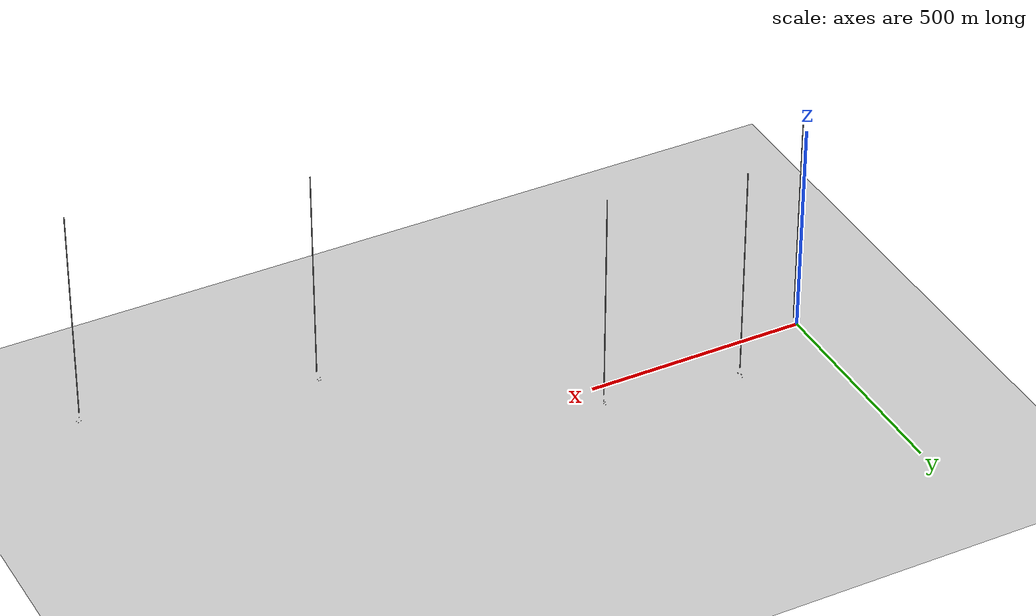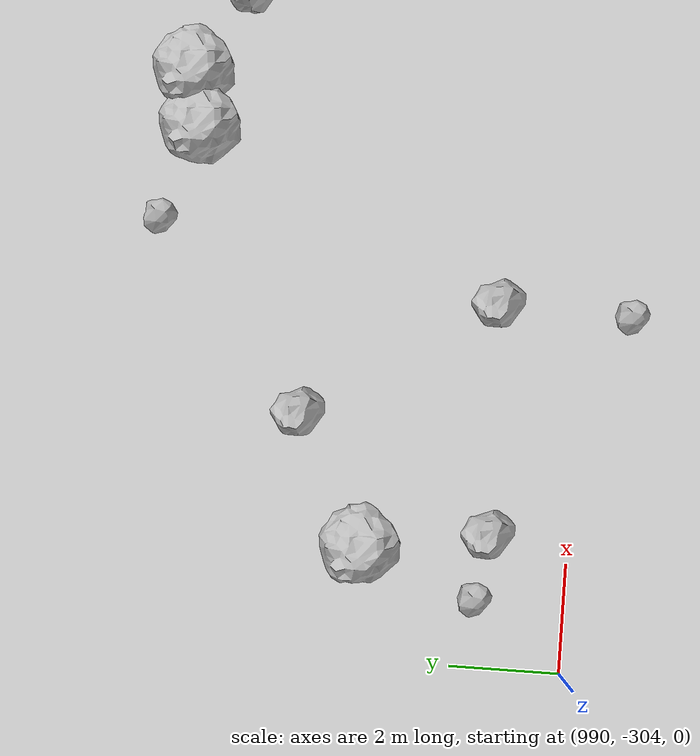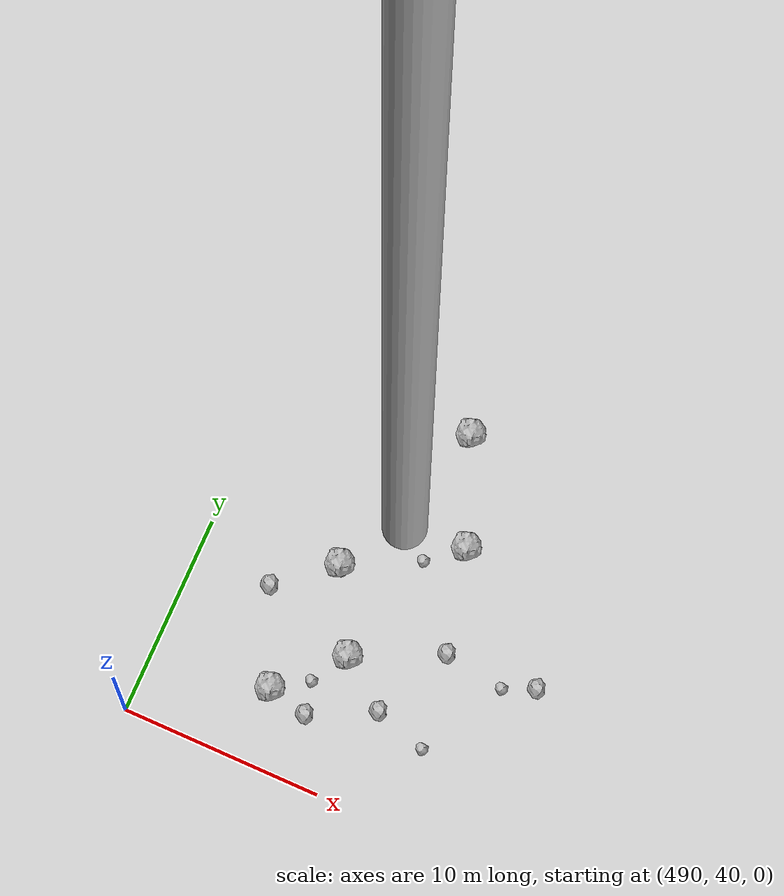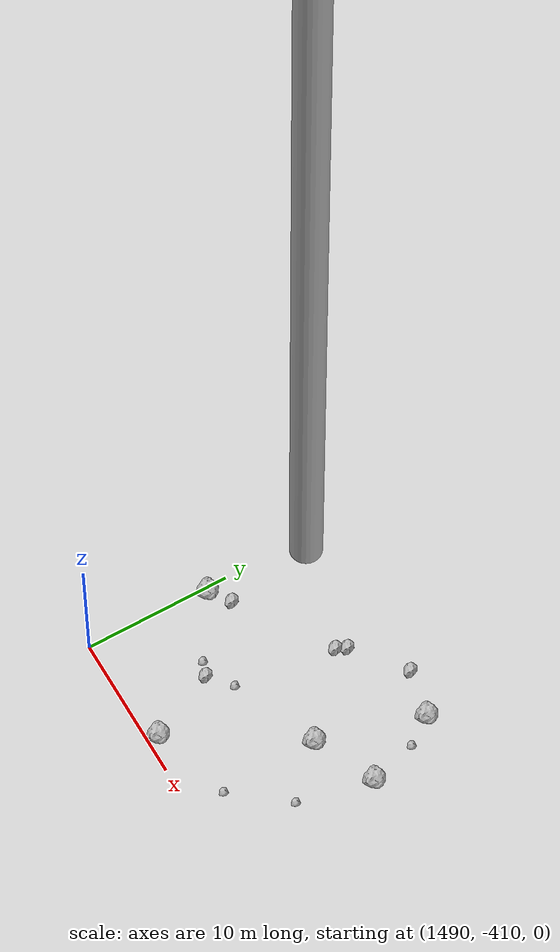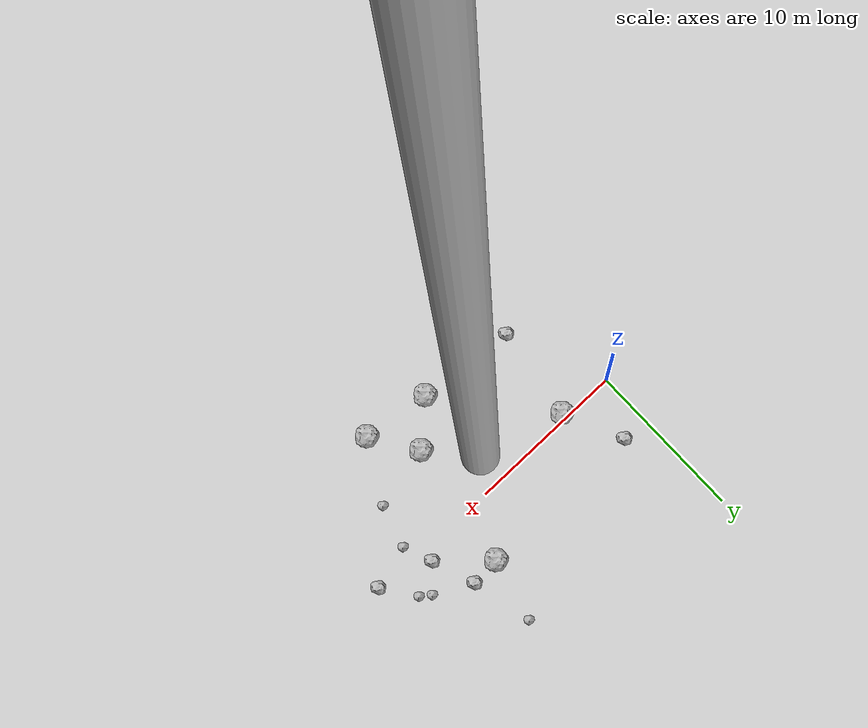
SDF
<?xml version="1.0" ?>
<sdf version="1.6">
  <world name="default">

    <include>
      <uri>model://custom_ground</uri>
    </include>

    <include>
      <uri>model://sun</uri>
    </include>

    <spherical_coordinates>
      <surface_model>EARTH_WGS84</surface_model>
      <latitude_deg>38.161479</latitude_deg>
      <longitude_deg>-122.454630</longitude_deg>
      <elevation>488.0</elevation>
      <heading_deg>90</heading_deg>
    </spherical_coordinates>

    <model name="rock1_0_0">
      <include>
        <uri>model://rock1</uri>
        <pose>10.983467577532497 -4.55277145787683 0.5 0 0 0</pose>
      </include>
    </model>
    <model name="rock1_0_1">
      <include>
        <uri>model://rock1</uri>
        <pose>3.3445778647308266 -0.383737470855948 0.5 0 0 0</pose>
      </include>
    </model>
    <model name="rock1_0_2">
      <include>
        <uri>model://rock1</uri>
        <pose>8.53918246223837 -6.7864339003444485 0.5 0 0 0</pose>
      </include>
    </model>
    <model name="rock1_0_3">
      <include>
        <uri>model://rock1</uri>
        <pose>12.256208881028915 3.281096373221896 0.5 0 0 0</pose>
      </include>
    </model>
    <model name="rock1_0_4">
      <include>
        <uri>model://rock1</uri>
        <pose>12.759274574263333 -7.377951369954829 0.5 0 0 0</pose>
      </include>
    </model>
    <model name="rock2_0_0">
      <include>
        <uri>model://rock2</uri>
        <pose>18.413052791195017 -0.3272469917036922 0.3 0 0 0</pose>
      </include>
    </model>
    <model name="rock2_0_1">
      <include>
        <uri>model://rock2</uri>
        <pose>14.077536117810329 3.3894084608801975 0.3 0 0 0</pose>
      </include>
    </model>
    <model name="rock2_0_2">
      <include>
        <uri>model://rock2</uri>
        <pose>2.425728713552955 -6.160177574672856 0.3 0 0 0</pose>
      </include>
    </model>
    <model name="rock2_0_3">
      <include>
        <uri>model://rock2</uri>
        <pose>1.6700336823598572 3.2919579379228363 0.3 0 0 0</pose>
      </include>
    </model>
    <model name="rock2_0_4">
      <include>
        <uri>model://rock2</uri>
        <pose>15.010575022704824 0.7107988519916635 0.3 0 0 0</pose>
      </include>
    </model>
    <model name="rock3_0_0">
      <include>
        <uri>model://rock3</uri>
        <pose>15.673627865365436 -1.1172207264065257 0.2 0 0 0</pose>
      </include>
    </model>
    <model name="rock3_0_1">
      <include>
        <uri>model://rock3</uri>
        <pose>13.229553121636695 7.175063521632083 0.2 0 0 0</pose>
      </include>
    </model>
    <model name="rock3_0_2">
      <include>
        <uri>model://rock3</uri>
        <pose>16.363071604623833 2.1543918105333955 0.2 0 0 0</pose>
      </include>
    </model>
    <model name="rock3_0_3">
      <include>
        <uri>model://rock3</uri>
        <pose>14.859331357452783 -3.7362760516702824 0.2 0 0 0</pose>
      </include>
    </model>
    <model name="rock3_0_4">
      <include>
        <uri>model://rock3</uri>
        <pose>16.996642884558057 1.6766862645440224 0.2 0 0 0</pose>
      </include>
    </model>
    <model name="rock1_1_0">
      <include>
        <uri>model://rock1</uri>
        <pose>196.4802132246361 98.80153921355554 0.5 0 0 0</pose>
      </include>
    </model>
    <model name="rock1_1_1">
      <include>
        <uri>model://rock1</uri>
        <pose>209.38496395411013 103.06227198264854 0.5 0 0 0</pose>
      </include>
    </model>
    <model name="rock1_1_2">
      <include>
        <uri>model://rock1</uri>
        <pose>196.10690353816187 97.50216450608988 0.5 0 0 0</pose>
      </include>
    </model>
    <model name="rock1_1_3">
      <include>
        <uri>model://rock1</uri>
        <pose>198.97780115438854 108.87855715459573 0.5 0 0 0</pose>
      </include>
    </model>
    <model name="rock1_1_4">
      <include>
        <uri>model://rock1</uri>
        <pose>196.34071290252732 101.2119166406332 0.5 0 0 0</pose>
      </include>
    </model>
    <model name="rock2_1_0">
      <include>
        <uri>model://rock2</uri>
        <pose>199.78024086064556 91.48733667662275 0.3 0 0 0</pose>
      </include>
    </model>
    <model name="rock2_1_1">
      <include>
        <uri>model://rock2</uri>
        <pose>205.99763194418094 97.44369107843478 0.3 0 0 0</pose>
      </include>
    </model>
    <model name="rock2_1_2">
      <include>
        <uri>model://rock2</uri>
        <pose>199.87546018923032 90.63828789326546 0.3 0 0 0</pose>
      </include>
    </model>
    <model name="rock2_1_3">
      <include>
        <uri>model://rock2</uri>
        <pose>196.63428016345728 94.16131826963753 0.3 0 0 0</pose>
      </include>
    </model>
    <model name="rock2_1_4">
      <include>
        <uri>model://rock2</uri>
        <pose>199.66486858817333 103.76438965165984 0.3 0 0 0</pose>
      </include>
    </model>
    <model name="rock3_1_0">
      <include>
        <uri>model://rock3</uri>
        <pose>203.07251456340921 104.34417677754806 0.2 0 0 0</pose>
      </include>
    </model>
    <model name="rock3_1_1">
      <include>
        <uri>model://rock3</uri>
        <pose>199.65674023351448 93.4745549831965 0.2 0 0 0</pose>
      </include>
    </model>
    <model name="rock3_1_2">
      <include>
        <uri>model://rock3</uri>
        <pose>195.82035944336693 98.96926980385791 0.2 0 0 0</pose>
      </include>
    </model>
    <model name="rock3_1_3">
      <include>
        <uri>model://rock3</uri>
        <pose>202.69948161499903 98.55708162040808 0.2 0 0 0</pose>
      </include>
    </model>
    <model name="rock3_1_4">
      <include>
        <uri>model://rock3</uri>
        <pose>198.2111603479266 104.71362056618987 0.2 0 0 0</pose>
      </include>
    </model>
    <model name="rock1_2_0">
      <include>
        <uri>model://rock1</uri>
        <pose>496.46619909990847 50.60436740744989 0.5 0 0 0</pose>
      </include>
    </model>
    <model name="rock1_2_1">
      <include>
        <uri>model://rock1</uri>
        <pose>498.63399613943614 46.694909611115285 0.5 0 0 0</pose>
      </include>
    </model>
    <model name="rock1_2_2">
      <include>
        <uri>model://rock1</uri>
        <pose>501.6891365023054 53.80178480306194 0.5 0 0 0</pose>
      </include>
    </model>
    <model name="rock1_2_3">
      <include>
        <uri>model://rock1</uri>
        <pose>495.8814135322143 43.77607359833626 0.5 0 0 0</pose>
      </include>
    </model>
    <model name="rock1_2_4">
      <include>
        <uri>model://rock1</uri>
        <pose>499.64012038394117 58.96635930338849 0.5 0 0 0</pose>
      </include>
    </model>
    <model name="rock2_2_0">
      <include>
        <uri>model://rock2</uri>
        <pose>502.89090299965403 48.73014145002953 0.3 0 0 0</pose>
      </include>
    </model>
    <model name="rock2_2_1">
      <include>
        <uri>model://rock2</uri>
        <pose>497.8825211384558 43.303069388462376 0.3 0 0 0</pose>
      </include>
    </model>
    <model name="rock2_2_2">
      <include>
        <uri>model://rock2</uri>
        <pose>507.4837219130028 48.92300618185455 0.3 0 0 0</pose>
      </include>
    </model>
    <model name="rock2_2_3">
      <include>
        <uri>model://rock2</uri>
        <pose>493.7873901626263 48.32565370248207 0.3 0 0 0</pose>
      </include>
    </model>
    <model name="rock2_2_4">
      <include>
        <uri>model://rock2</uri>
        <pose>501.0308739324823 44.8731962464107 0.3 0 0 0</pose>
      </include>
    </model>
    <model name="rock3_2_0">
      <include>
        <uri>model://rock3</uri>
        <pose>503.6522967309004 44.02091009815618 0.2 0 0 0</pose>
      </include>
    </model>
    <model name="rock3_2_1">
      <include>
        <uri>model://rock3</uri>
        <pose>500.03071904756627 52.3615030434227 0.2 0 0 0</pose>
      </include>
    </model>
    <model name="rock3_2_2">
      <include>
        <uri>model://rock3</uri>
        <pose>505.9432558096476 48.21862917676644 0.2 0 0 0</pose>
      </include>
    </model>
    <model name="rock3_2_3">
      <include>
        <uri>model://rock3</uri>
        <pose>497.51593388128987 44.87076777354463 0.2 0 0 0</pose>
      </include>
    </model>
    <model name="rock3_2_4">
      <include>
        <uri>model://rock3</uri>
        <pose>496.6569322147917 50.341971176565714 0.2 0 0 0</pose>
      </include>
    </model>
    <model name="rock1_3_0">
      <include>
        <uri>model://rock1</uri>
        <pose>992.1717332605463 -300.2140330776828 0.5 0 0 0</pose>
      </include>
    </model>
    <model name="rock1_3_1">
      <include>
        <uri>model://rock1</uri>
        <pose>1000.5353739808314 -296.6421634613263 0.5 0 0 0</pose>
      </include>
    </model>
    <model name="rock1_3_2">
      <include>
        <uri>model://rock1</uri>
        <pose>994.2719140529875 -292.3358965748512 0.5 0 0 0</pose>
      </include>
    </model>
    <model name="rock1_3_3">
      <include>
        <uri>model://rock1</uri>
        <pose>999.5315483173696 -296.8237366389183 0.5 0 0 0</pose>
      </include>
    </model>
    <model name="rock1_3_4">
      <include>
        <uri>model://rock1</uri>
        <pose>999.3469333663725 -292.2231276580797 0.5 0 0 0</pose>
      </include>
    </model>
    <model name="rock2_3_0">
      <include>
        <uri>model://rock2</uri>
        <pose>994.449462119572 -298.9317632959255 0.3 0 0 0</pose>
      </include>
    </model>
    <model name="rock2_3_1">
      <include>
        <uri>model://rock2</uri>
        <pose>1002.0392118803069 -297.56275865510673 0.3 0 0 0</pose>
      </include>
    </model>
    <model name="rock2_3_2">
      <include>
        <uri>model://rock2</uri>
        <pose>992.4672020968197 -302.5098714710003 0.3 0 0 0</pose>
      </include>
    </model>
    <model name="rock2_3_3">
      <include>
        <uri>model://rock2</uri>
        <pose>1004.3957724830525 -305.2875186297004 0.3 0 0 0</pose>
      </include>
    </model>
    <model name="rock2_3_4">
      <include>
        <uri>model://rock2</uri>
        <pose>996.6540069177514 -302.4203611675316 0.3 0 0 0</pose>
      </include>
    </model>
    <model name="rock3_3_0">
      <include>
        <uri>model://rock3</uri>
        <pose>1007.6902542459607 -294.93723898341034 0.2 0 0 0</pose>
      </include>
    </model>
    <model name="rock3_3_1">
      <include>
        <uri>model://rock3</uri>
        <pose>997.8048456379522 -296.19765212479945 0.2 0 0 0</pose>
      </include>
    </model>
    <model name="rock3_3_2">
      <include>
        <uri>model://rock3</uri>
        <pose>991.2526080108845 -302.37267049732174 0.2 0 0 0</pose>
      </include>
    </model>
    <model name="rock3_3_3">
      <include>
        <uri>model://rock3</uri>
        <pose>1006.0451674287581 -307.73577821831555 0.2 0 0 0</pose>
      </include>
    </model>
    <model name="rock3_3_4">
      <include>
        <uri>model://rock3</uri>
        <pose>996.5564281809036 -304.89001309718265 0.2 0 0 0</pose>
      </include>
    </model>
    <model name="rock1_4_0">
      <include>
        <uri>model://rock1</uri>
        <pose>1507.2041842893116 -399.0911624254054 0.5 0 0 0</pose>
      </include>
    </model>
    <model name="rock1_4_1">
      <include>
        <uri>model://rock1</uri>
        <pose>1505.0027049244445 -393.95285061696956 0.5 0 0 0</pose>
      </include>
    </model>
    <model name="rock1_4_2">
      <include>
        <uri>model://rock1</uri>
        <pose>1503.0057521686786 -400.98809901782994 0.5 0 0 0</pose>
      </include>
    </model>
    <model name="rock1_4_3">
      <include>
        <uri>model://rock1</uri>
        <pose>1497.7369122187124 -409.2862303220169 0.5 0 0 0</pose>
      </include>
    </model>
    <model name="rock1_4_4">
      <include>
        <uri>model://rock1</uri>
        <pose>1490.3827293718443 -401.5558171221584 0.5 0 0 0</pose>
      </include>
    </model>
    <model name="rock2_4_0">
      <include>
        <uri>model://rock2</uri>
        <pose>1501.7110023183586 -393.19538000108577 0.3 0 0 0</pose>
      </include>
    </model>
    <model name="rock2_4_1">
      <include>
        <uri>model://rock2</uri>
        <pose>1495.5347009490765 -404.62930786872994 0.3 0 0 0</pose>
      </include>
    </model>
    <model name="rock2_4_2">
      <include>
        <uri>model://rock2</uri>
        <pose>1491.7329608343132 -400.5507512397139 0.3 0 0 0</pose>
      </include>
    </model>
    <model name="rock2_4_3">
      <include>
        <uri>model://rock2</uri>
        <pose>1498.3000246550955 -395.82475267634595 0.3 0 0 0</pose>
      </include>
    </model>
    <model name="rock2_4_4">
      <include>
        <uri>model://rock2</uri>
        <pose>1497.9707013458508 -396.5260660810449 0.3 0 0 0</pose>
      </include>
    </model>
    <model name="rock3_4_0">
      <include>
        <uri>model://rock3</uri>
        <pose>1506.018092226173 -404.1240026824766 0.2 0 0 0</pose>
      </include>
    </model>
    <model name="rock3_4_1">
      <include>
        <uri>model://rock3</uri>
        <pose>1506.2419421417587 -395.83401069226875 0.2 0 0 0</pose>
      </include>
    </model>
    <model name="rock3_4_2">
      <include>
        <uri>model://rock3</uri>
        <pose>1503.143687155213 -407.67246552640864 0.2 0 0 0</pose>
      </include>
    </model>
    <model name="rock3_4_3">
      <include>
        <uri>model://rock3</uri>
        <pose>1497.0525529482559 -403.3896767395154 0.2 0 0 0</pose>
      </include>
    </model>
    <model name="rock3_4_4">
      <include>
        <uri>model://rock3</uri>
        <pose>1494.5303922907979 -404.28646979005475 0.2 0 0 0</pose>
      </include>
    </model>

    <model name="cylinder_1">
      <static>true</static>
      <link name="link">
        <visual name="visual">
          <geometry>
            <cylinder>
              <radius>1</radius>
              <length>500</length>
            </cylinder>
          </geometry>
        </visual>
      </link>
      <pose>10 0 270 0 0 0</pose>
    </model>

    <model name="cylinder_2">
      <static>true</static>
      <link name="link">
        <visual name="visual">
          <geometry>
            <cylinder>
              <radius>1</radius>
              <length>500</length>
            </cylinder>
          </geometry>
        </visual>
      </link>
      <pose>200 100 270 0 0 0</pose>
    </model>

    <model name="cylinder_3">
      <static>true</static>
      <link name="link">
        <visual name="visual">
          <geometry>
            <cylinder>
              <radius>1</radius>
              <length>500</length>
            </cylinder>
          </geometry>
        </visual>
      </link>
      <pose>500 50 270 0 0 0</pose>
    </model>

    <model name="cylinder_4">
      <static>true</static>
      <link name="link">
        <visual name="visual">
          <geometry>
            <cylinder>
              <radius>1</radius>
              <length>500</length>
            </cylinder>
          </geometry>
        </visual>
      </link>
      <pose>1000 -300 270 0 0 0</pose>
    </model>

    <model name="cylinder_5">
      <static>true</static>
      <link name="link">
        <visual name="visual">
          <geometry>
            <cylinder>
              <radius>1</radius>
              <length>500</length>
            </cylinder>
          </geometry>
        </visual>
      </link>
      <pose>1500 -400 270 0 0 0</pose>
    </model>

  </world>
</sdf>

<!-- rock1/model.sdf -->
<sdf version="1.6">
  <model name="rock1">
    <static>true</static> <!-- Set to true if the model should not move -->
    <pose>0 0 0 0 0 0</pose>

    <!--z offset is 0.5 for full scale-->

    <link name="link">
      <collision name="rock1_collision">
        <geometry>
          <mesh>
            <uri>model://meshes/rock1.dae</uri>
          </mesh>
        </geometry>
      </collision>
      <visual name="rock1_visual">
        <geometry>
          <mesh>
            <uri>model://meshes/rock1.dae</uri>
          </mesh>
        </geometry>
        <material>
          <script>
            <uri>model://materials/scripts/sand_pebbles.material</uri>
            <name>custom_ground/Image</name>
          </script>
        </material>
      </visual>
    </link>
  </model>
</sdf>

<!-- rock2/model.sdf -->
<sdf version="1.6">
  <model name="rock2">
    <static>true</static> <!-- Set to true if the model should not move -->
    <pose>0 0 0 0 0 0</pose>

    <!--z offset is 0.3 for full scale-->

    <link name="link">
      <collision name="rock2_collision">
        <geometry>
          <mesh>
            <uri>model://meshes/rock2.dae</uri>
          </mesh>
        </geometry>
      </collision>
      <visual name="rock2_visual">
        <geometry>
          <mesh>
            <uri>model://meshes/rock2.dae</uri>
          </mesh>
        </geometry>
        <material>
          <script>
            <uri>model://materials/scripts/sand_pebbles.material</uri>
            <name>custom_ground/Image</name>
          </script>
        </material>
      </visual>
    </link>
  </model>
</sdf>

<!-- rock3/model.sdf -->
<sdf version="1.6">
  <model name="rock3">
    <static>true</static> <!-- Set to true if the model should not move -->
    <pose>0 0 0 0 0 0</pose>

    <!--z offset is 0.2 for full scale-->

    <link name="link">
      <collision name="rock3_collision">
        <geometry>
          <mesh>
            <uri>model://meshes/rock3.dae</uri>
          </mesh>
        </geometry>
      </collision>
      <visual name="rock3_visual">
        <geometry>
          <mesh>
            <uri>model://meshes/rock3.dae</uri>
          </mesh>
        </geometry>
        <material>
          <script>
            <uri>model://materials/scripts/sand_pebbles.material</uri>
            <name>custom_ground/Image</name>
          </script>
        </material>
      </visual>
    </link>
  </model>
</sdf>

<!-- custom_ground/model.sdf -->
<sdf version="1.6">
  <model name="custom_ground">
    <static>true</static> <!-- Ground is static and immovable -->
    <link name="ground_link">
      <pose>240 0 0 0 0 0</pose> <!-- Position and orientation relative to the world -->
      <!-- Visual Representation -->
      <visual name="ground_visual">
        <geometry>
          <plane>
            <normal>0 0 1</normal> <!-- Upward facing plane -->
            <size>500 500</size> <!-- Size of the plane -->
          </plane>
        </geometry>
        <material>
          <script>
            <uri>model://materials/scripts/sand_pebbles.material</uri>
            <name>custom_ground/Image</name>
          </script>
        </material>
      </visual>

      <!-- Collision Representation -->
      <collision name="ground_collision">
        <geometry>
          <plane>
            <normal>0 0 1</normal>
            <size>100 100</size>
          </plane>
        </geometry>
      </collision>

    </link>
  </model>
</sdf>
